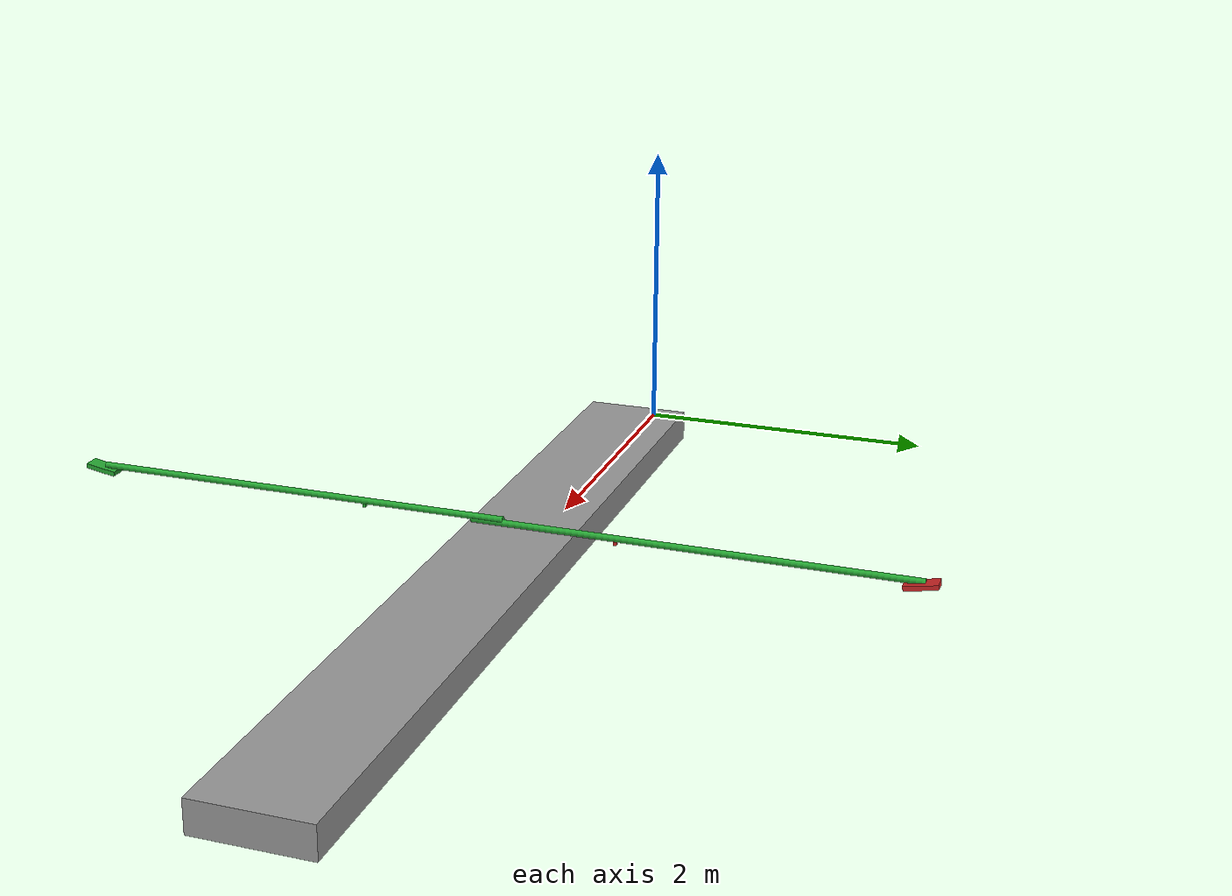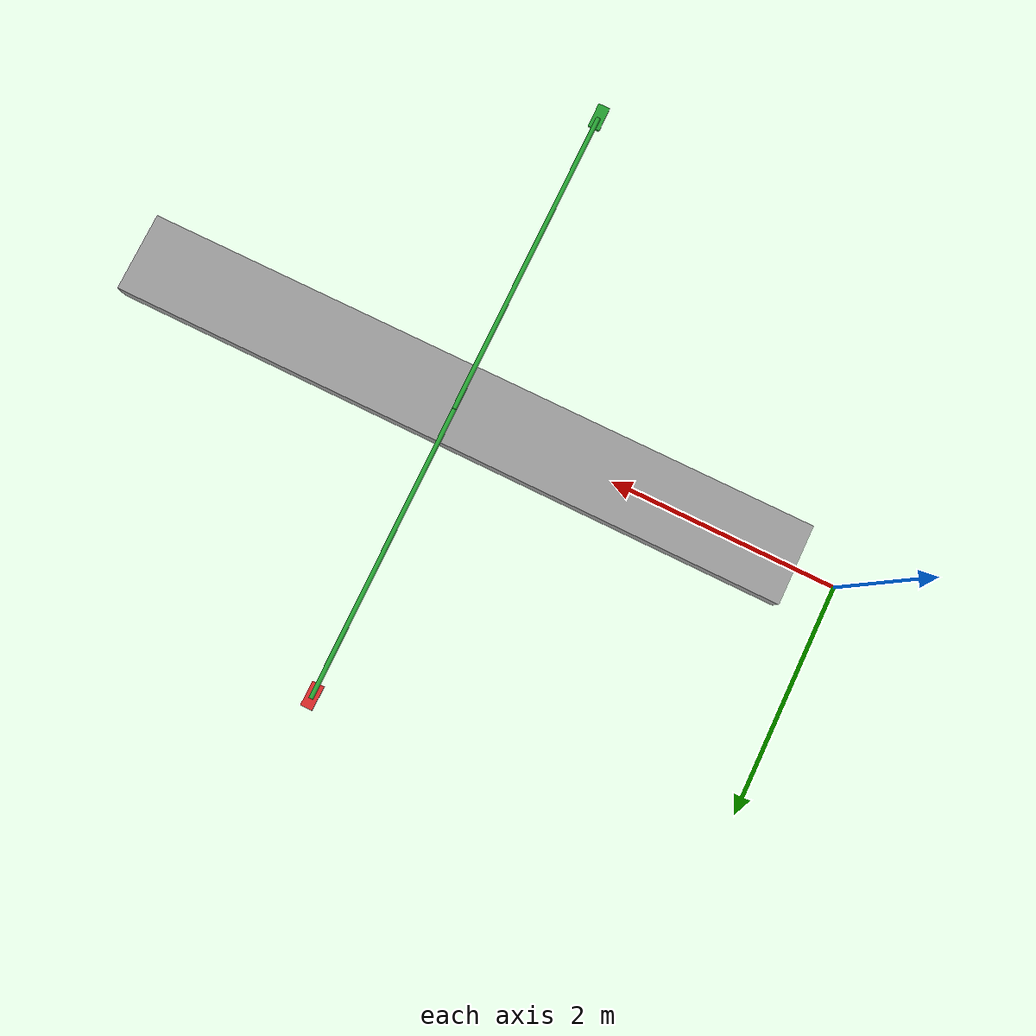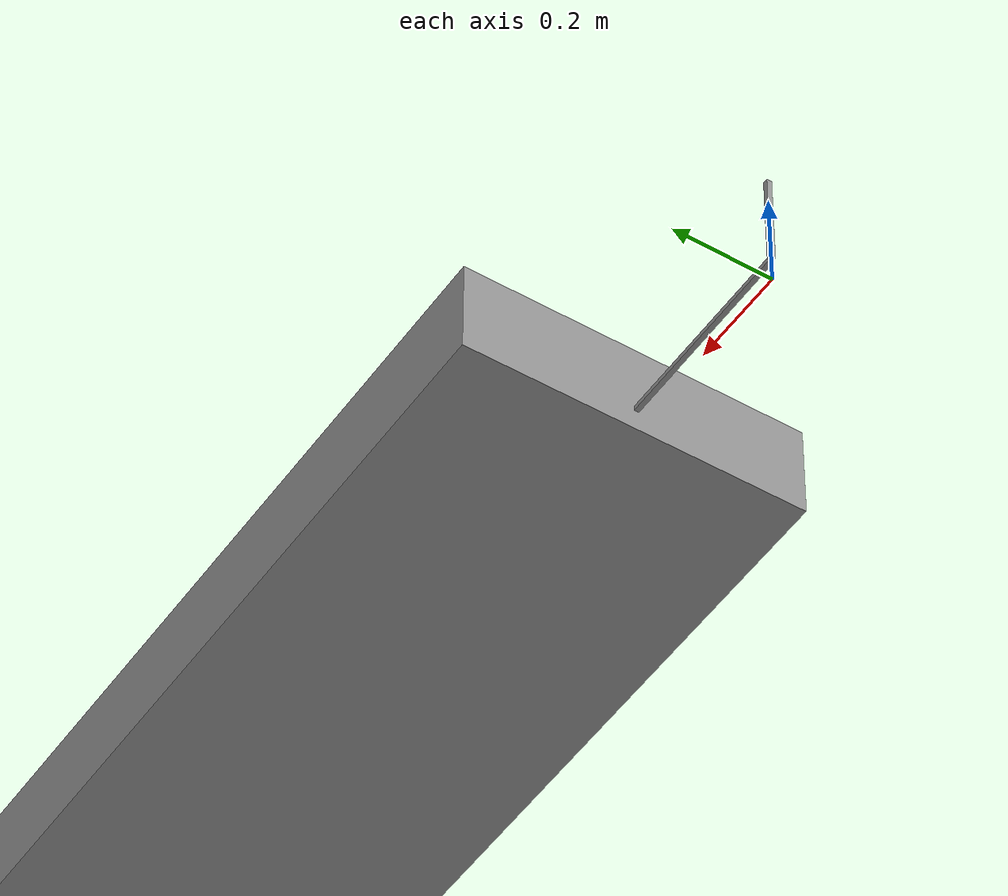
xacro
<?xml version="1.0" ?>

<robot name="myboat"  xmlns:xacro="http://www.ros.org/wiki/xacro">

  <!-- Constants for robot dimensions -->

  <!-- Import all Gazebo-customization elements, including Gazebo colors -->
  <xacro:include filename="$(find boot1_description)/urdf/boot1.gazebo" />
  <!-- Import Rviz colors -->
  <xacro:include filename="$(find boot1_description)/urdf/materials.xacro" />

  <joint name="prism" type="prismatic">
    <parent link="world"/>
    <child link="l1"/>
    <origin xyz="0 0 0.25" rpy="0 0 0"/>
    <axis xyz="1 0 0"/>
    <limit effort="1000.0" lower="-1000" upper="1000" velocity="0.5"/>
  </joint>

  <joint name="rev1" type="revolute">
    <parent link="l1"/>
    <child link="l2"/>
    <origin xyz="0.0 0 -0.2" rpy="0 ${pi/2} 0"/>
    <axis xyz="0 1 0"/>
    <limit effort="1000.0" lower="-1" upper="1" velocity="1.0"/>
  </joint>

  <joint name="rev2" type="revolute">
    <parent link="l2"/>
    <child link="skiff"/>
    <origin xyz="0.0 0.0 0.4" rpy="${pi} ${pi/2} 0"/>
    <axis xyz="0 1 0"/>
    <limit effort="1000.0" lower="-1" upper="1" velocity="1.0"/>
  </joint>

  <joint name="starboard_rowlock" type="revolute">
    <parent link="skiff"/>
    <child link="starboard_rowlock"/>
    <origin rpy="0.0  0.0 0.0" xyz="-3 0.8 0.42"/>
    <axis xyz="0 0 1"/>
    <limit effort="1000.0" lower="-1.4" upper="1.4" velocity="1.0"/>
  </joint>
  <joint name="port_rowlock" type="revolute">
    <parent link="skiff"/>
    <child link="port_rowlock"/>
    <origin rpy="0.0  0.0 0.0" xyz="-3 -0.8 0.4"/>
    <axis xyz="0 0 1"/>
    <limit effort="1000.0" lower="-1.4" upper="1.4" velocity="1.0"/>
  </joint>

  <joint name="starboard_oar" type="revolute">
    <parent link="starboard_rowlock"/>
    <child link="starboard_oar"/>
    <origin rpy="0.0  ${pi/2} -${pi/2}" xyz="0.0 0.0   0.02"/>
    <axis xyz="0 1 0"/>
    <limit effort="1000.0" lower="-0.4" upper="0.0" velocity="1.0"/>
  </joint>

  <joint name="port_oar" type="revolute">
    <parent link="port_rowlock"/>
    <child link="port_oar"/>
    <origin rpy="0.0  ${pi/2} -${pi/2}" xyz="0.0 0.0   0.02"/>
    <axis xyz="0 1 0"/>
    <limit effort="1000.0" lower="0.0" upper="0.4" velocity="1.0"/>
  </joint>

  <joint name="starboard_blade" type="revolute">
    <parent link="starboard_oar"/>
    <child link="starboard_blade"/>
    <origin rpy="0 0  0.0" xyz="0.0 0.0   -1.8"/>
    <axis xyz="0 1 0"/>
    <limit effort="1000.0" lower="-0.4" upper="0.4" velocity="1.0"/>
  </joint>

  <joint name="port_blade" type="revolute">
    <parent link="port_oar"/>
    <child link="port_blade"/>
    <origin rpy="0.0  0 0.0" xyz="0.0 0.0   1.8"/>
    <axis xyz="0 1 0"/>
    <limit effort="1000.0" lower="-0.4" upper="0.4" velocity="1.0"/>
  </joint>

  <link name="world"/>

  <link name="l1">
    <inertial>
      <mass value="0.01"/>
      <origin rpy="0 0 0" xyz="0 0.0 -0.1"/>
      <inertia ixx="0.006" ixy="0" ixz="0" iyy="0.1" iyz="0" izz="0.1"/>
    </inertial>
    <visual>
      <origin rpy="0 0 0" xyz="0.0 0.0 -0.1"/>
      <geometry>
        <box size="0.01 0.01 0.20"/>
      </geometry>
    </visual>
  </link>

  <link name="l2">
    <inertial>
      <mass value="0.01"/>
      <origin rpy="0 0 0" xyz="0 0.0 0.2"/>
      <inertia ixx="0.006" ixy="0" ixz="0" iyy="0.1" iyz="0" izz="0.1"/>
    </inertial>
    <visual>
      <origin rpy="0 0 0" xyz="0.0 0.0 0.2"/>
      <geometry>
        <box size="0.01 0.01 0.40"/>
      </geometry>
    </visual>
  </link>

  <link name="skiff">
    <inertial>
      <mass value="75"/>   <!-- 15 + 60 voor de roeier -->
      <origin rpy="0 0 0" xyz="-3 0.0 0.05"/>
      <inertia ixx="3.2" ixy="0" ixz="0" iyy="54.2" iyz="0" izz="57"/>
    </inertial>
    <collision>
      <origin rpy="0 0 0" xyz="-3 0.0   0.05"/>
      <geometry>
        <box size="6.0 0.7 0.2"/>
      </geometry>
    </collision>
    <visual>
      <!-- should be a nice skull shape including riggers-->
      <origin rpy="0 0 0" xyz="-3 0.0   0.05"/>
      <geometry>
        <box size="6.0 0.7 0.2"/>
      </geometry>
    </visual>
  </link>

  <link name="starboard_rowlock">
    <inertial>
      <mass value="0.1"/>
      <origin rpy="0 0 0" xyz="0.0 0.0 0.0"/>
      <inertia ixx="0.000017" ixy="0" ixz="0" iyy="0.000017" iyz="0" izz="0.000007"/>
    </inertial>
    <collision>
      <origin rpy="0 0 0" xyz="0.0 0.0   0.0"/>
      <geometry>
        <box size="0.02 0.02 0.04"/>
      </geometry>
    </collision>
    <visual>
      <origin rpy="0 0 0" xyz="0.0 0.0   0.0"/>
      <geometry>
        <box size="0.02 0.02 0.04"/>
      </geometry>
    </visual>
  </link>

  <link name="port_rowlock">
    <inertial>
      <mass value="0.1"/>
      <origin rpy="0 0 0" xyz="0.0 0.0 0.0"/>
      <inertia ixx="0.000017" ixy="0" ixz="0" iyy="0.000017" iyz="0" izz="0.000007"/>
    </inertial>
    <collision>
      <origin rpy="0 0 0" xyz="0.0 0.0   0.0"/>
      <geometry>
        <box size="0.02 0.02 0.04"/>
      </geometry>
    </collision>
    <visual>
      <origin rpy="0 0 0" xyz="0.0 0.0   0.0"/>
      <geometry>
        <box size="0.02 0.02 0.04"/>
      </geometry>
    </visual>
  </link>

  <link name="starboard_oar">
    <inertial>
      <mass value="1.0"/>
      <origin rpy="0 0 0" xyz="0 0 -0.45"/>
      <inertia ixx="0.6" ixy="0" ixz="0" iyy="0.6" iyz="0" izz="0.001"/>
    </inertial>
    <collision>
      <origin rpy="0 0 0" xyz="0   0   -0.45"/>
      <geometry>
        <cylinder length="2.0" radius="0.02"/>
      </geometry>
    </collision>
    <visual>
      <origin rpy="0 0 0" xyz="0   0.0   -0.45"/>
      <geometry>
        <cylinder length="2.7" radius="0.02"/>
      </geometry>
    </visual>
  </link>
  <link name="port_oar">
    <inertial>
      <mass value="1.0"/>
      <origin rpy="0 0 0" xyz="0 0 0.45"/>
      <inertia ixx="0.6" ixy="0" ixz="0" iyy="0.6" iyz="0" izz="0.001"/>
    </inertial>
    <collision>
      <origin rpy="0 0 0" xyz="0   0   0.45"/>
      <geometry>
        <cylinder length="2.0" radius="0.02"/>  <!-- 2.0 to prevent collissions  -->
      </geometry>
    </collision>
    <visual>
      <origin rpy="0 0 0" xyz="0   0   0.45"/>
      <geometry>
        <cylinder length="2.7" radius="0.02"/>
      </geometry>
    </visual>
  </link>
  <link name="starboard_blade">
    <inertial>
      <mass value="1.0"/>
      <origin rpy="0 -1.4 0" xyz="0.02 0 -0.02"/>
      <inertia ixx="0.0009" ixy="0" ixz="0" iyy="0.0034" iyz="0" izz="0.004"/>
    </inertial>
    <collision>
      <origin rpy="0 -1.4 0" xyz="0.02    0   -0.02"/>
      <geometry>
        <box size="0.2 0.1 0.03"/>
      </geometry>
    </collision>
    <visual>
      <origin rpy="0 -1.4 0" xyz="0.02    0   -0.02"/>
      <geometry>
        <box size="0.2 0.1 0.03"/>
      </geometry>
    </visual>
  </link>
  <link name="port_blade">
    <inertial>
      <mass value="1.0"/>
      <origin rpy="0 1.4 0" xyz="0.02 0 -0.02"/>
      <inertia ixx="0.0009" ixy="0" ixz="0" iyy="0.0034" iyz="0" izz="0.004"/>
    </inertial>
    <collision>
      <origin rpy="0 1.4 0" xyz="0.02    0   -0.02"/>
      <geometry>
        <box size="0.2 0.1 0.03"/>
      </geometry>
    </collision>
    <visual>
      <origin rpy="0 1.4 0" xyz="0.02    0.0  -0.02"/>
      <geometry>
        <box size="0.2 0.1 0.03"/>
      </geometry>
    </visual>
  </link>

  <transmission name="tran1">
    <type>transmission_interface/SimpleTransmission</type>
    <joint name="starboard_rowlock">
      <hardwareInterface>hardware_interface/EffortJointInterface</hardwareInterface>
    </joint>
    <actuator name="motor1">
      <mechanicalReduction>1</mechanicalReduction>
    </actuator>
  </transmission>

  <transmission name="tran2">
    <type>transmission_interface/SimpleTransmission</type>
    <joint name="port_rowlock">
      <hardwareInterface>hardware_interface/EffortJointInterface</hardwareInterface>
    </joint>
    <actuator name="motor2">
      <mechanicalReduction>1</mechanicalReduction>
    </actuator>
  </transmission>

  <transmission name="tran3">
    <type>transmission_interface/SimpleTransmission</type>
    <joint name="starboard_oar">
      <hardwareInterface>hardware_interface/EffortJointInterface</hardwareInterface>
    </joint>
    <actuator name="motor3">
      <mechanicalReduction>1</mechanicalReduction>
    </actuator>
  </transmission>

  <transmission name="tran4">
    <type>transmission_interface/SimpleTransmission</type>
    <joint name="port_oar">
      <hardwareInterface>hardware_interface/EffortJointInterface</hardwareInterface>
    </joint>
    <actuator name="motor4">
      <mechanicalReduction>1</mechanicalReduction>
    </actuator>
  </transmission>

  <transmission name="tran5">
    <type>transmission_interface/SimpleTransmission</type>
    <joint name="starboard_blade">
      <hardwareInterface>hardware_interface/EffortJointInterface</hardwareInterface>
    </joint>
    <actuator name="motor5">
      <mechanicalReduction>1</mechanicalReduction>
    </actuator>
  </transmission>

  <transmission name="tran6">
    <type>transmission_interface/SimpleTransmission</type>
    <joint name="port_blade">
      <hardwareInterface>hardware_interface/EffortJointInterface</hardwareInterface>
    </joint>
    <actuator name="motor6">
      <mechanicalReduction>1</mechanicalReduction>
    </actuator>
  </transmission>

</robot>
